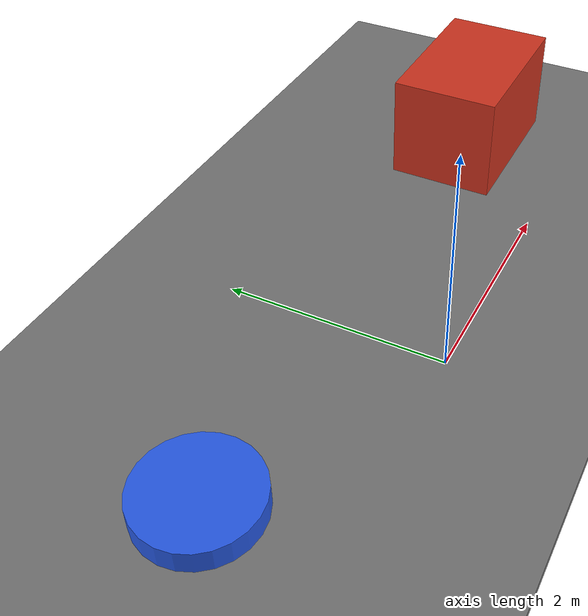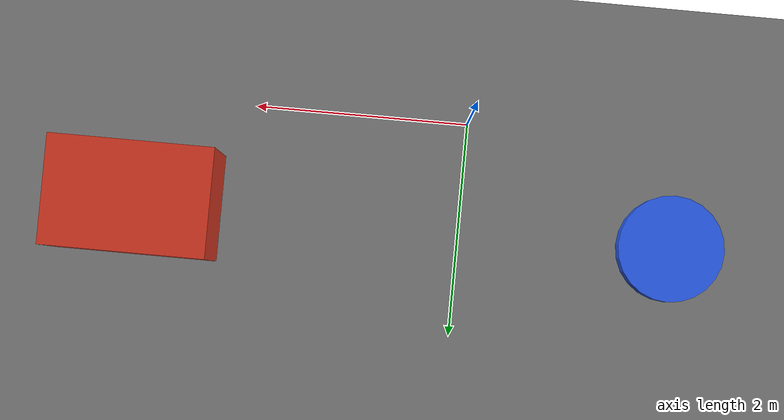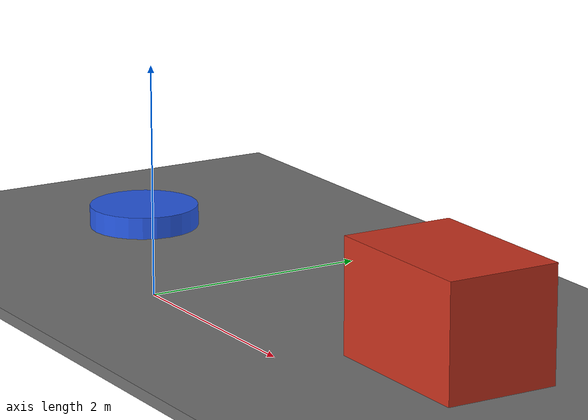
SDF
<?xml version="1.0"?>
<sdf version="1.10">
  <world name="resilient_lab">
    <plugin
      filename="gz-sim-physics-system"
      name="gz::sim::systems::Physics"/>
    <plugin
      filename="gz-sim-user-commands-system"
      name="gz::sim::systems::UserCommands"/>
    <plugin
      filename="gz-sim-scene-broadcaster-system"
      name="gz::sim::systems::SceneBroadcaster"/>
    <plugin
      filename="gz-sim-sensors-system"
      name="gz::sim::systems::Sensors">
      <render_engine>ogre2</render_engine>
    </plugin>
    <plugin
      filename="gz-sim-imu-system"
      name="gz::sim::systems::Imu"/>

    <physics name="default_physics" type="ode">
      <max_step_size>0.001</max_step_size>
      <real_time_factor>1.0</real_time_factor>
    </physics>

    <light name="sun" type="directional">
      <cast_shadows>true</cast_shadows>
      <pose>0 0 10 0 0 0</pose>
      <diffuse>0.8 0.8 0.8 1</diffuse>
      <specular>0.2 0.2 0.2 1</specular>
      <attenuation>
        <range>1000</range>
        <constant>0.9</constant>
        <linear>0.01</linear>
        <quadratic>0.001</quadratic>
      </attenuation>
      <direction>-0.5 0.1 -0.9</direction>
    </light>

    <model name="ground_plane">
      <static>true</static>
      <link name="ground_link">
        <pose>0 0 -0.05 0 0 0</pose>
        <collision name="ground_collision">
          <geometry>
            <box>
              <size>20 20 0.1</size>
            </box>
          </geometry>
          <surface>
            <friction>
              <ode>
                <mu>1.0</mu>
                <mu2>1.0</mu2>
              </ode>
            </friction>
          </surface>
        </collision>
        <visual name="ground_visual">
          <geometry>
            <box>
              <size>20 20 0.1</size>
            </box>
          </geometry>
          <material>
            <ambient>0.35 0.35 0.35 1</ambient>
            <diffuse>0.45 0.45 0.45 1</diffuse>
            <specular>0.05 0.05 0.05 1</specular>
          </material>
        </visual>
      </link>
    </model>

    <model name="box_obstacle">
      <static>true</static>
      <pose>3 1 0.5 0 0 0</pose>
      <link name="box_link">
        <collision name="box_collision">
          <geometry>
            <box>
              <size>1.5 1 1</size>
            </box>
          </geometry>
        </collision>
        <visual name="box_visual">
          <geometry>
            <box>
              <size>1.5 1 1</size>
            </box>
          </geometry>
          <material>
            <ambient>0.6 0.15 0.1 1</ambient>
            <diffuse>0.8 0.2 0.12 1</diffuse>
            <specular>0.1 0.1 0.1 1</specular>
          </material>
        </visual>
      </link>
    </model>

    <model name="cylinder_checkpoint">
      <static>true</static>
      <pose>-2 1 0.1 0 0 0</pose>
      <link name="checkpoint_link">
        <collision name="checkpoint_collision">
          <geometry>
            <cylinder>
              <radius>0.5</radius>
              <length>0.2</length>
            </cylinder>
          </geometry>
        </collision>
        <visual name="checkpoint_visual">
          <geometry>
            <cylinder>
              <radius>0.5</radius>
              <length>0.2</length>
            </cylinder>
          </geometry>
          <material>
            <ambient>0.1 0.25 0.65 1</ambient>
            <diffuse>0.15 0.35 0.9 1</diffuse>
            <specular>0.15 0.15 0.15 1</specular>
          </material>
        </visual>
      </link>
    </model>
  </world>
</sdf>
